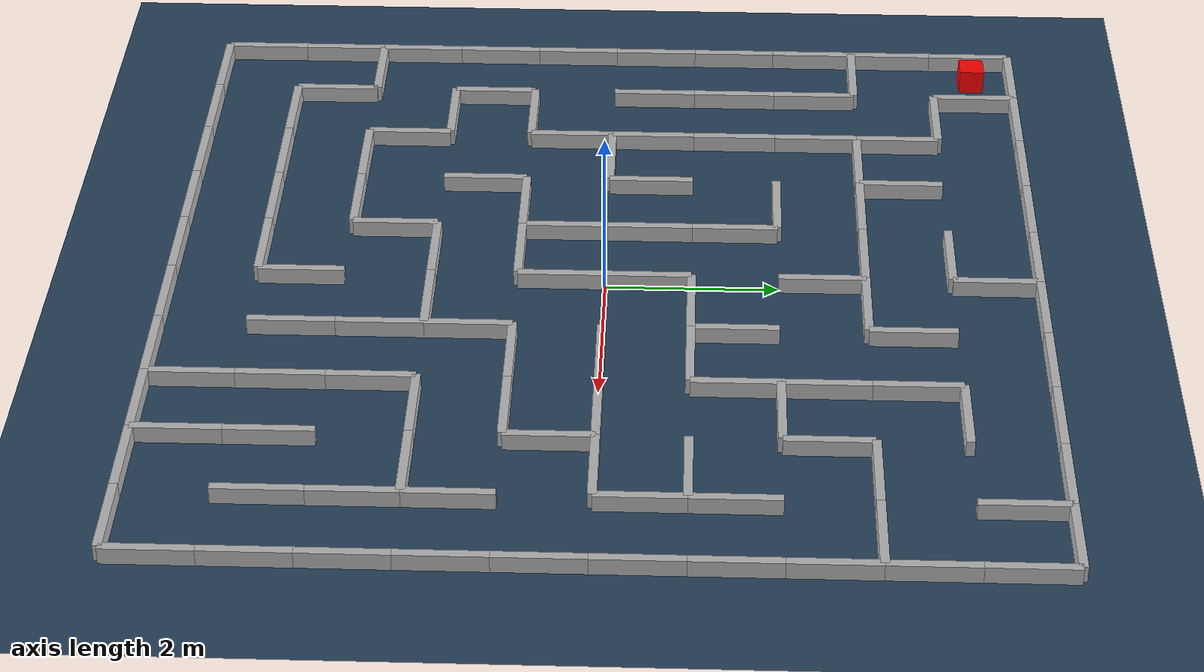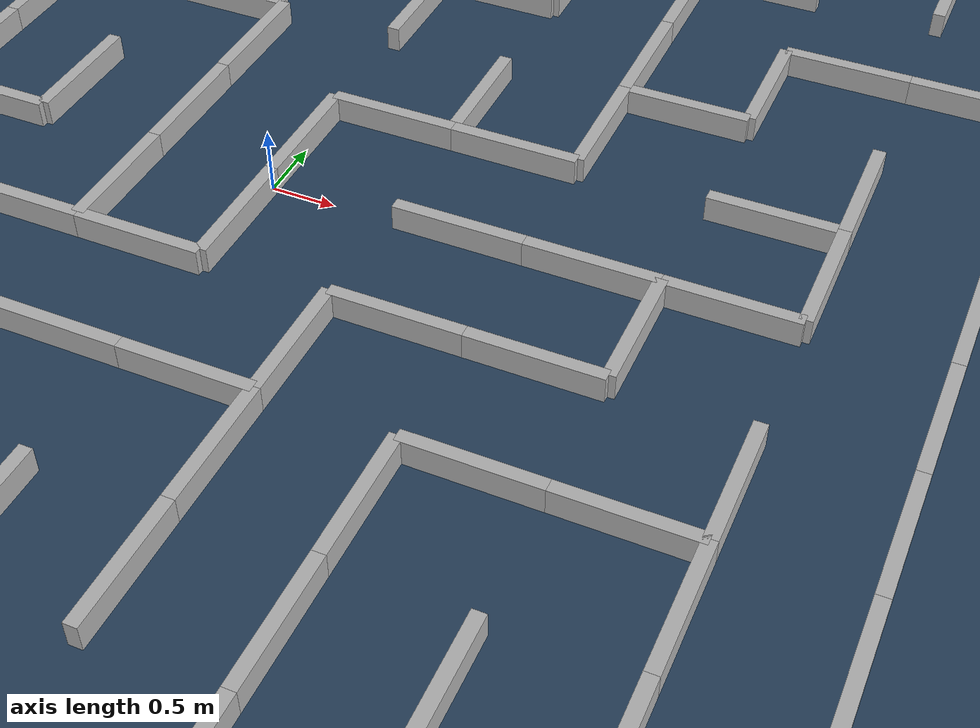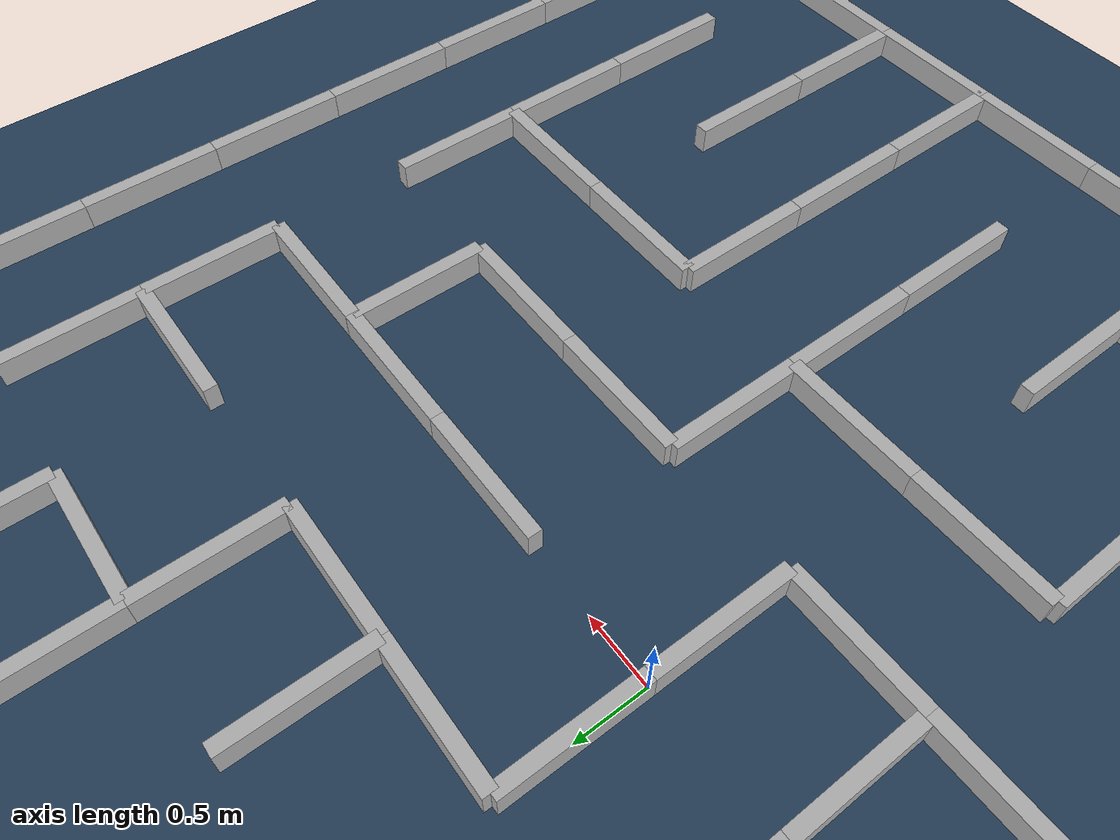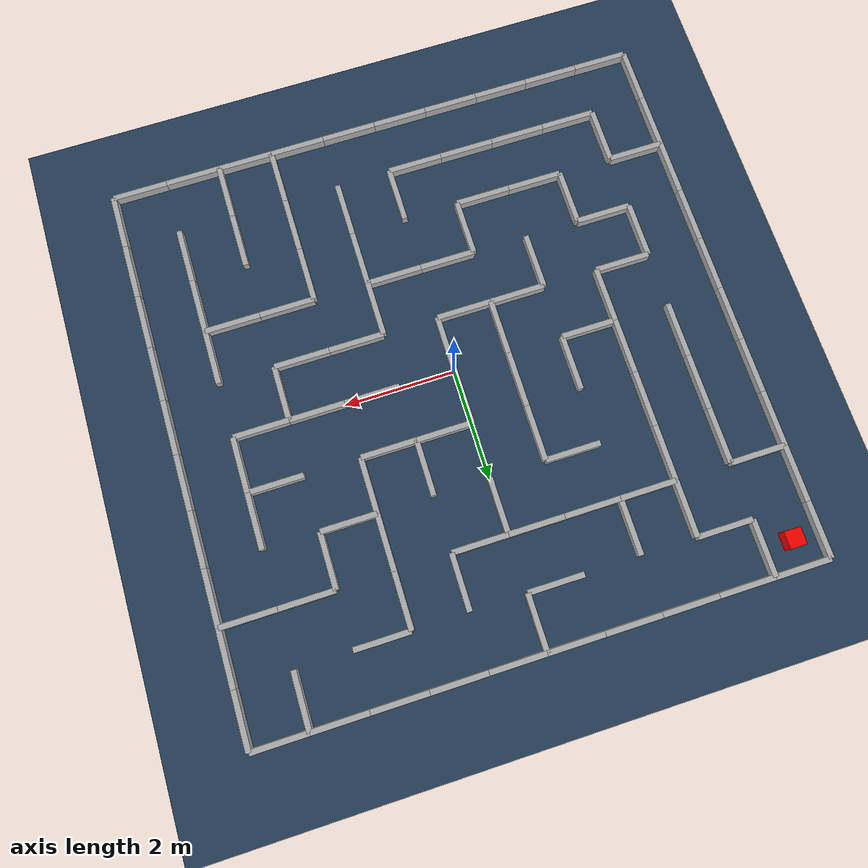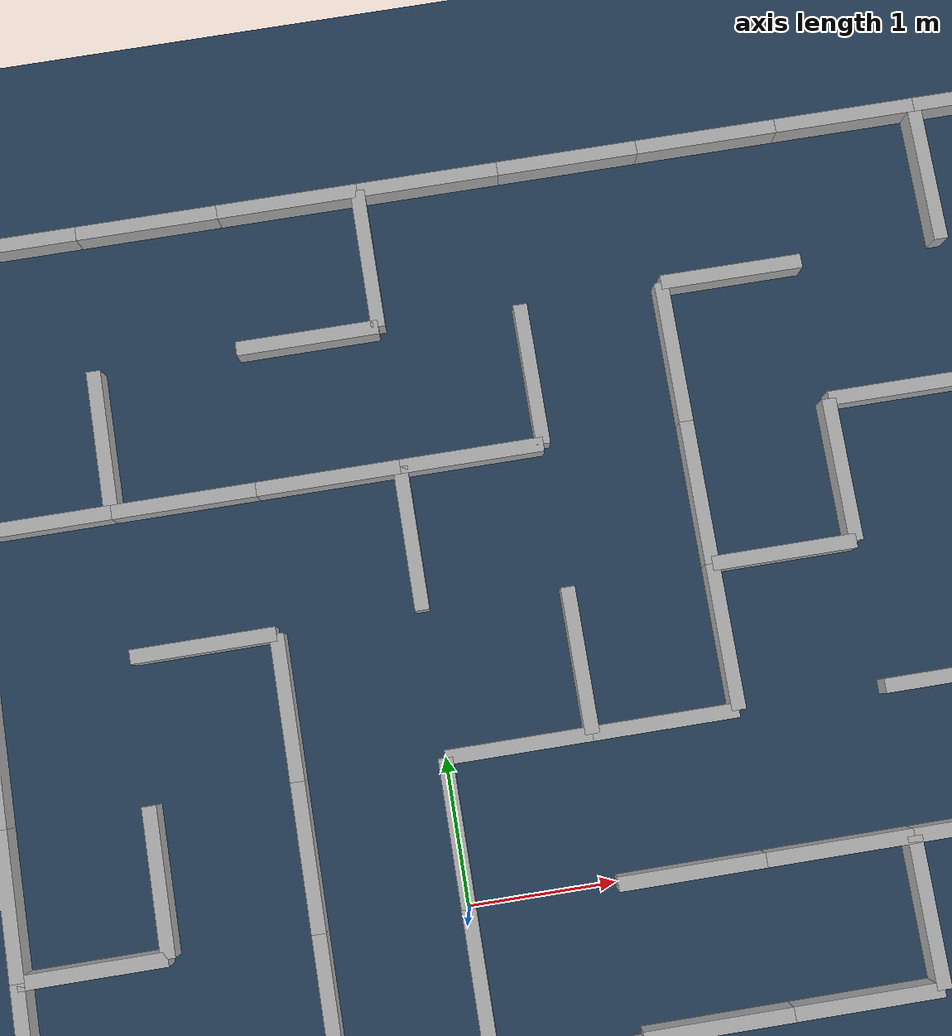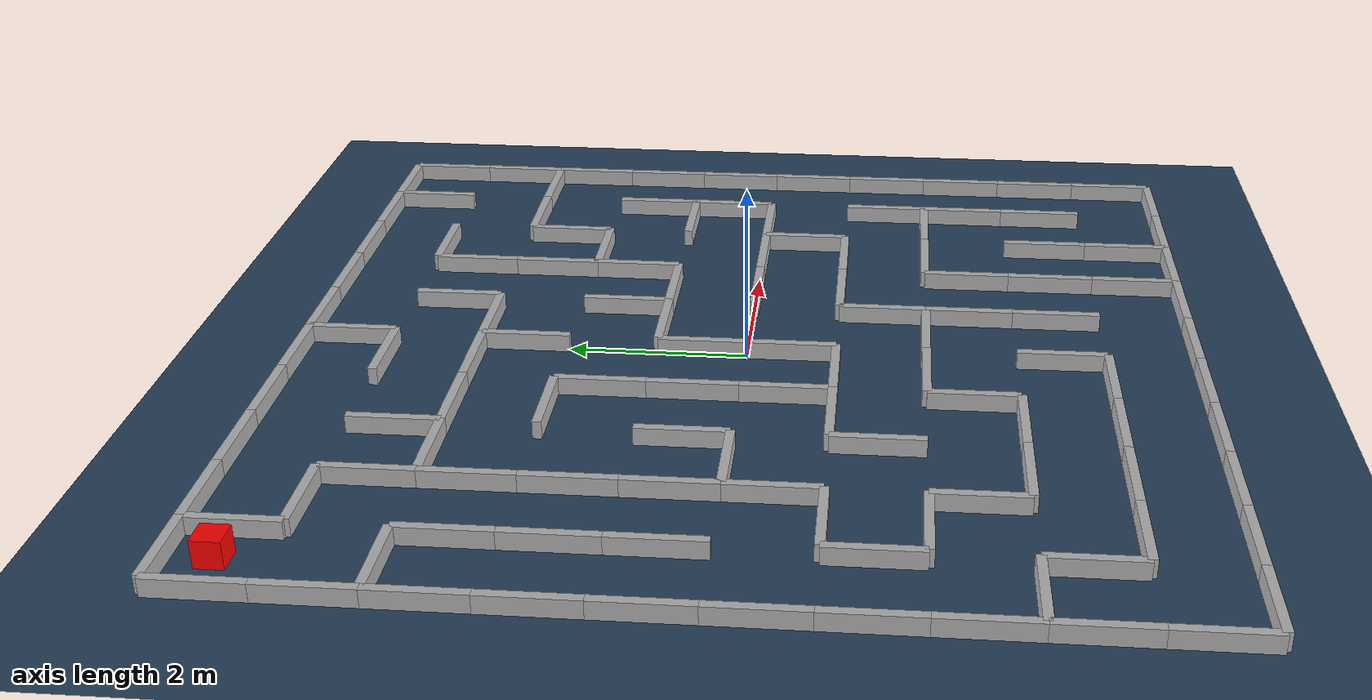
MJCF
<mujoco model="laberinto_generado">
    <compiler coordinate="local" inertiafromgeom="true"/>

    <asset>
        <texture name="suelo_textura" type="2d" builtin="checker" rgb1=".2 .3 .4" rgb2=".1 .2 .3" width="512" height="512" mark="none"/>
        <material name="suelo_material" texture="suelo_textura" texrepeat="2 2" texuniform="true"/>
    </asset>

    <worldbody>
        <light pos="0 0 5" dir="0 0 -1" directional="true"/>
        <geom name="suelo" type="plane" pos="0 0 0" size="10 10 0.1" material="suelo_material"/>

        <geom name="vwall_0" type="box" pos="-5.0 4.5 0.1" size="0.05 0.5 0.1" rgba="0.7 0.7 0.7 1"/>
        <geom name="vwall_1" type="box" pos="-4.0 4.5 0.1" size="0.05 0.5 0.1" rgba="0.7 0.7 0.7 1"/>
        <geom name="vwall_2" type="box" pos="0.0 4.5 0.1" size="0.05 0.5 0.1" rgba="0.7 0.7 0.7 1"/>
        <geom name="vwall_3" type="box" pos="4.0 4.5 0.1" size="0.05 0.5 0.1" rgba="0.7 0.7 0.7 1"/>
        <geom name="vwall_4" type="box" pos="5.0 4.5 0.1" size="0.05 0.5 0.1" rgba="0.7 0.7 0.7 1"/>
        <geom name="vwall_5" type="box" pos="-5.0 3.5 0.1" size="0.05 0.5 0.1" rgba="0.7 0.7 0.7 1"/>
        <geom name="vwall_6" type="box" pos="-3.0 3.5 0.1" size="0.05 0.5 0.1" rgba="0.7 0.7 0.7 1"/>
        <geom name="vwall_7" type="box" pos="-2.0 3.5 0.1" size="0.05 0.5 0.1" rgba="0.7 0.7 0.7 1"/>
        <geom name="vwall_8" type="box" pos="1.0 3.5 0.1" size="0.05 0.5 0.1" rgba="0.7 0.7 0.7 1"/>
        <geom name="vwall_9" type="box" pos="2.0 3.5 0.1" size="0.05 0.5 0.1" rgba="0.7 0.7 0.7 1"/>
        <geom name="vwall_10" type="box" pos="5.0 3.5 0.1" size="0.05 0.5 0.1" rgba="0.7 0.7 0.7 1"/>
        <geom name="vwall_11" type="box" pos="-5.0 2.5 0.1" size="0.05 0.5 0.1" rgba="0.7 0.7 0.7 1"/>
        <geom name="vwall_12" type="box" pos="-4.0 2.5 0.1" size="0.05 0.5 0.1" rgba="0.7 0.7 0.7 1"/>
        <geom name="vwall_13" type="box" pos="-3.0 2.5 0.1" size="0.05 0.5 0.1" rgba="0.7 0.7 0.7 1"/>
        <geom name="vwall_14" type="box" pos="0.0 2.5 0.1" size="0.05 0.5 0.1" rgba="0.7 0.7 0.7 1"/>
        <geom name="vwall_15" type="box" pos="2.0 2.5 0.1" size="0.05 0.5 0.1" rgba="0.7 0.7 0.7 1"/>
        <geom name="vwall_16" type="box" pos="3.0 2.5 0.1" size="0.05 0.5 0.1" rgba="0.7 0.7 0.7 1"/>
        <geom name="vwall_17" type="box" pos="5.0 2.5 0.1" size="0.05 0.5 0.1" rgba="0.7 0.7 0.7 1"/>
        <geom name="vwall_18" type="box" pos="-5.0 1.5 0.1" size="0.05 0.5 0.1" rgba="0.7 0.7 0.7 1"/>
        <geom name="vwall_19" type="box" pos="-4.0 1.5 0.1" size="0.05 0.5 0.1" rgba="0.7 0.7 0.7 1"/>
        <geom name="vwall_20" type="box" pos="-3.0 1.5 0.1" size="0.05 0.5 0.1" rgba="0.7 0.7 0.7 1"/>
        <geom name="vwall_21" type="box" pos="-1.0 1.5 0.1" size="0.05 0.5 0.1" rgba="0.7 0.7 0.7 1"/>
        <geom name="vwall_22" type="box" pos="1.0 1.5 0.1" size="0.05 0.5 0.1" rgba="0.7 0.7 0.7 1"/>
        <geom name="vwall_23" type="box" pos="2.0 1.5 0.1" size="0.05 0.5 0.1" rgba="0.7 0.7 0.7 1"/>
        <geom name="vwall_24" type="box" pos="4.0 1.5 0.1" size="0.05 0.5 0.1" rgba="0.7 0.7 0.7 1"/>
        <geom name="vwall_25" type="box" pos="5.0 1.5 0.1" size="0.05 0.5 0.1" rgba="0.7 0.7 0.7 1"/>
        <geom name="vwall_26" type="box" pos="-5.0 0.5 0.1" size="0.05 0.5 0.1" rgba="0.7 0.7 0.7 1"/>
        <geom name="vwall_27" type="box" pos="-4.0 0.5 0.1" size="0.05 0.5 0.1" rgba="0.7 0.7 0.7 1"/>
        <geom name="vwall_28" type="box" pos="-3.0 0.5 0.1" size="0.05 0.5 0.1" rgba="0.7 0.7 0.7 1"/>
        <geom name="vwall_29" type="box" pos="-2.0 0.5 0.1" size="0.05 0.5 0.1" rgba="0.7 0.7 0.7 1"/>
        <geom name="vwall_30" type="box" pos="-1.0 0.5 0.1" size="0.05 0.5 0.1" rgba="0.7 0.7 0.7 1"/>
        <geom name="vwall_31" type="box" pos="0.0 0.5 0.1" size="0.05 0.5 0.1" rgba="0.7 0.7 0.7 1"/>
        <geom name="vwall_32" type="box" pos="4.0 0.5 0.1" size="0.05 0.5 0.1" rgba="0.7 0.7 0.7 1"/>
        <geom name="vwall_33" type="box" pos="5.0 0.5 0.1" size="0.05 0.5 0.1" rgba="0.7 0.7 0.7 1"/>
        <geom name="vwall_34" type="box" pos="-5.0 -0.5 0.1" size="0.05 0.5 0.1" rgba="0.7 0.7 0.7 1"/>
        <geom name="vwall_35" type="box" pos="-3.0 -0.5 0.1" size="0.05 0.5 0.1" rgba="0.7 0.7 0.7 1"/>
        <geom name="vwall_36" type="box" pos="-1.0 -0.5 0.1" size="0.05 0.5 0.1" rgba="0.7 0.7 0.7 1"/>
        <geom name="vwall_37" type="box" pos="0.0 -0.5 0.1" size="0.05 0.5 0.1" rgba="0.7 0.7 0.7 1"/>
        <geom name="vwall_38" type="box" pos="3.0 -0.5 0.1" size="0.05 0.5 0.1" rgba="0.7 0.7 0.7 1"/>
        <geom name="vwall_39" type="box" pos="5.0 -0.5 0.1" size="0.05 0.5 0.1" rgba="0.7 0.7 0.7 1"/>
        <geom name="vwall_40" type="box" pos="-5.0 -1.5 0.1" size="0.05 0.5 0.1" rgba="0.7 0.7 0.7 1"/>
        <geom name="vwall_41" type="box" pos="-4.0 -1.5 0.1" size="0.05 0.5 0.1" rgba="0.7 0.7 0.7 1"/>
        <geom name="vwall_42" type="box" pos="-2.0 -1.5 0.1" size="0.05 0.5 0.1" rgba="0.7 0.7 0.7 1"/>
        <geom name="vwall_43" type="box" pos="1.0 -1.5 0.1" size="0.05 0.5 0.1" rgba="0.7 0.7 0.7 1"/>
        <geom name="vwall_44" type="box" pos="4.0 -1.5 0.1" size="0.05 0.5 0.1" rgba="0.7 0.7 0.7 1"/>
        <geom name="vwall_45" type="box" pos="5.0 -1.5 0.1" size="0.05 0.5 0.1" rgba="0.7 0.7 0.7 1"/>
        <geom name="vwall_46" type="box" pos="-5.0 -2.5 0.1" size="0.05 0.5 0.1" rgba="0.7 0.7 0.7 1"/>
        <geom name="vwall_47" type="box" pos="-3.0 -2.5 0.1" size="0.05 0.5 0.1" rgba="0.7 0.7 0.7 1"/>
        <geom name="vwall_48" type="box" pos="-1.0 -2.5 0.1" size="0.05 0.5 0.1" rgba="0.7 0.7 0.7 1"/>
        <geom name="vwall_49" type="box" pos="1.0 -2.5 0.1" size="0.05 0.5 0.1" rgba="0.7 0.7 0.7 1"/>
        <geom name="vwall_50" type="box" pos="2.0 -2.5 0.1" size="0.05 0.5 0.1" rgba="0.7 0.7 0.7 1"/>
        <geom name="vwall_51" type="box" pos="4.0 -2.5 0.1" size="0.05 0.5 0.1" rgba="0.7 0.7 0.7 1"/>
        <geom name="vwall_52" type="box" pos="5.0 -2.5 0.1" size="0.05 0.5 0.1" rgba="0.7 0.7 0.7 1"/>
        <geom name="vwall_53" type="box" pos="-5.0 -3.5 0.1" size="0.05 0.5 0.1" rgba="0.7 0.7 0.7 1"/>
        <geom name="vwall_54" type="box" pos="-4.0 -3.5 0.1" size="0.05 0.5 0.1" rgba="0.7 0.7 0.7 1"/>
        <geom name="vwall_55" type="box" pos="0.0 -3.5 0.1" size="0.05 0.5 0.1" rgba="0.7 0.7 0.7 1"/>
        <geom name="vwall_56" type="box" pos="1.0 -3.5 0.1" size="0.05 0.5 0.1" rgba="0.7 0.7 0.7 1"/>
        <geom name="vwall_57" type="box" pos="2.0 -3.5 0.1" size="0.05 0.5 0.1" rgba="0.7 0.7 0.7 1"/>
        <geom name="vwall_58" type="box" pos="3.0 -3.5 0.1" size="0.05 0.5 0.1" rgba="0.7 0.7 0.7 1"/>
        <geom name="vwall_59" type="box" pos="4.0 -3.5 0.1" size="0.05 0.5 0.1" rgba="0.7 0.7 0.7 1"/>
        <geom name="vwall_60" type="box" pos="5.0 -3.5 0.1" size="0.05 0.5 0.1" rgba="0.7 0.7 0.7 1"/>
        <geom name="vwall_61" type="box" pos="-5.0 -4.5 0.1" size="0.05 0.5 0.1" rgba="0.7 0.7 0.7 1"/>
        <geom name="vwall_62" type="box" pos="2.0 -4.5 0.1" size="0.05 0.5 0.1" rgba="0.7 0.7 0.7 1"/>
        <geom name="vwall_63" type="box" pos="3.0 -4.5 0.1" size="0.05 0.5 0.1" rgba="0.7 0.7 0.7 1"/>
        <geom name="vwall_64" type="box" pos="5.0 -4.5 0.1" size="0.05 0.5 0.1" rgba="0.7 0.7 0.7 1"/>
        <geom name="hwall_65" type="box" pos="-4.5 5.0 0.1" size="0.5 0.05 0.1" rgba="0.7 0.7 0.7 1"/>
        <geom name="hwall_66" type="box" pos="-3.5 5.0 0.1" size="0.5 0.05 0.1" rgba="0.7 0.7 0.7 1"/>
        <geom name="hwall_67" type="box" pos="-2.5 5.0 0.1" size="0.5 0.05 0.1" rgba="0.7 0.7 0.7 1"/>
        <geom name="hwall_68" type="box" pos="-1.5 5.0 0.1" size="0.5 0.05 0.1" rgba="0.7 0.7 0.7 1"/>
        <geom name="hwall_69" type="box" pos="-0.5 5.0 0.1" size="0.5 0.05 0.1" rgba="0.7 0.7 0.7 1"/>
        <geom name="hwall_70" type="box" pos="0.5 5.0 0.1" size="0.5 0.05 0.1" rgba="0.7 0.7 0.7 1"/>
        <geom name="hwall_71" type="box" pos="1.5 5.0 0.1" size="0.5 0.05 0.1" rgba="0.7 0.7 0.7 1"/>
        <geom name="hwall_72" type="box" pos="2.5 5.0 0.1" size="0.5 0.05 0.1" rgba="0.7 0.7 0.7 1"/>
        <geom name="hwall_73" type="box" pos="3.5 5.0 0.1" size="0.5 0.05 0.1" rgba="0.7 0.7 0.7 1"/>
        <geom name="hwall_74" type="box" pos="4.5 5.0 0.1" size="0.5 0.05 0.1" rgba="0.7 0.7 0.7 1"/>
        <geom name="hwall_75" type="box" pos="-3.5 4.0 0.1" size="0.5 0.05 0.1" rgba="0.7 0.7 0.7 1"/>
        <geom name="hwall_76" type="box" pos="-0.5 4.0 0.1" size="0.5 0.05 0.1" rgba="0.7 0.7 0.7 1"/>
        <geom name="hwall_77" type="box" pos="2.5 4.0 0.1" size="0.5 0.05 0.1" rgba="0.7 0.7 0.7 1"/>
        <geom name="hwall_78" type="box" pos="-4.5 3.0 0.1" size="0.5 0.05 0.1" rgba="0.7 0.7 0.7 1"/>
        <geom name="hwall_79" type="box" pos="-2.5 3.0 0.1" size="0.5 0.05 0.1" rgba="0.7 0.7 0.7 1"/>
        <geom name="hwall_80" type="box" pos="-1.5 3.0 0.1" size="0.5 0.05 0.1" rgba="0.7 0.7 0.7 1"/>
        <geom name="hwall_81" type="box" pos="-0.5 3.0 0.1" size="0.5 0.05 0.1" rgba="0.7 0.7 0.7 1"/>
        <geom name="hwall_82" type="box" pos="0.5 3.0 0.1" size="0.5 0.05 0.1" rgba="0.7 0.7 0.7 1"/>
        <geom name="hwall_83" type="box" pos="3.5 3.0 0.1" size="0.5 0.05 0.1" rgba="0.7 0.7 0.7 1"/>
        <geom name="hwall_84" type="box" pos="4.5 3.0 0.1" size="0.5 0.05 0.1" rgba="0.7 0.7 0.7 1"/>
        <geom name="hwall_85" type="box" pos="-1.5 2.0 0.1" size="0.5 0.05 0.1" rgba="0.7 0.7 0.7 1"/>
        <geom name="hwall_86" type="box" pos="2.5 2.0 0.1" size="0.5 0.05 0.1" rgba="0.7 0.7 0.7 1"/>
        <geom name="hwall_87" type="box" pos="0.5 1.0 0.1" size="0.5 0.05 0.1" rgba="0.7 0.7 0.7 1"/>
        <geom name="hwall_88" type="box" pos="1.5 1.0 0.1" size="0.5 0.05 0.1" rgba="0.7 0.7 0.7 1"/>
        <geom name="hwall_89" type="box" pos="3.5 1.0 0.1" size="0.5 0.05 0.1" rgba="0.7 0.7 0.7 1"/>
        <geom name="hwall_90" type="box" pos="-2.5 0.0 0.1" size="0.5 0.05 0.1" rgba="0.7 0.7 0.7 1"/>
        <geom name="hwall_91" type="box" pos="1.5 0.0 0.1" size="0.5 0.05 0.1" rgba="0.7 0.7 0.7 1"/>
        <geom name="hwall_92" type="box" pos="2.5 0.0 0.1" size="0.5 0.05 0.1" rgba="0.7 0.7 0.7 1"/>
        <geom name="hwall_93" type="box" pos="3.5 0.0 0.1" size="0.5 0.05 0.1" rgba="0.7 0.7 0.7 1"/>
        <geom name="hwall_94" type="box" pos="-3.5 -1.0 0.1" size="0.5 0.05 0.1" rgba="0.7 0.7 0.7 1"/>
        <geom name="hwall_95" type="box" pos="-1.5 -1.0 0.1" size="0.5 0.05 0.1" rgba="0.7 0.7 0.7 1"/>
        <geom name="hwall_96" type="box" pos="-0.5 -1.0 0.1" size="0.5 0.05 0.1" rgba="0.7 0.7 0.7 1"/>
        <geom name="hwall_97" type="box" pos="1.5 -1.0 0.1" size="0.5 0.05 0.1" rgba="0.7 0.7 0.7 1"/>
        <geom name="hwall_98" type="box" pos="2.5 -1.0 0.1" size="0.5 0.05 0.1" rgba="0.7 0.7 0.7 1"/>
        <geom name="hwall_99" type="box" pos="-3.5 -2.0 0.1" size="0.5 0.05 0.1" rgba="0.7 0.7 0.7 1"/>
        <geom name="hwall_100" type="box" pos="-0.5 -2.0 0.1" size="0.5 0.05 0.1" rgba="0.7 0.7 0.7 1"/>
        <geom name="hwall_101" type="box" pos="0.5 -2.0 0.1" size="0.5 0.05 0.1" rgba="0.7 0.7 0.7 1"/>
        <geom name="hwall_102" type="box" pos="2.5 -2.0 0.1" size="0.5 0.05 0.1" rgba="0.7 0.7 0.7 1"/>
        <geom name="hwall_103" type="box" pos="3.5 -2.0 0.1" size="0.5 0.05 0.1" rgba="0.7 0.7 0.7 1"/>
        <geom name="hwall_104" type="box" pos="-4.5 -3.0 0.1" size="0.5 0.05 0.1" rgba="0.7 0.7 0.7 1"/>
        <geom name="hwall_105" type="box" pos="-2.5 -3.0 0.1" size="0.5 0.05 0.1" rgba="0.7 0.7 0.7 1"/>
        <geom name="hwall_106" type="box" pos="-1.5 -3.0 0.1" size="0.5 0.05 0.1" rgba="0.7 0.7 0.7 1"/>
        <geom name="hwall_107" type="box" pos="-3.5 -4.0 0.1" size="0.5 0.05 0.1" rgba="0.7 0.7 0.7 1"/>
        <geom name="hwall_108" type="box" pos="-2.5 -4.0 0.1" size="0.5 0.05 0.1" rgba="0.7 0.7 0.7 1"/>
        <geom name="hwall_109" type="box" pos="-1.5 -4.0 0.1" size="0.5 0.05 0.1" rgba="0.7 0.7 0.7 1"/>
        <geom name="hwall_110" type="box" pos="-0.5 -4.0 0.1" size="0.5 0.05 0.1" rgba="0.7 0.7 0.7 1"/>
        <geom name="hwall_111" type="box" pos="-4.5 -5.0 0.1" size="0.5 0.05 0.1" rgba="0.7 0.7 0.7 1"/>
        <geom name="hwall_112" type="box" pos="-3.5 -5.0 0.1" size="0.5 0.05 0.1" rgba="0.7 0.7 0.7 1"/>
        <geom name="hwall_113" type="box" pos="-2.5 -5.0 0.1" size="0.5 0.05 0.1" rgba="0.7 0.7 0.7 1"/>
        <geom name="hwall_114" type="box" pos="-1.5 -5.0 0.1" size="0.5 0.05 0.1" rgba="0.7 0.7 0.7 1"/>
        <geom name="hwall_115" type="box" pos="-0.5 -5.0 0.1" size="0.5 0.05 0.1" rgba="0.7 0.7 0.7 1"/>
        <geom name="hwall_116" type="box" pos="0.5 -5.0 0.1" size="0.5 0.05 0.1" rgba="0.7 0.7 0.7 1"/>
        <geom name="hwall_117" type="box" pos="1.5 -5.0 0.1" size="0.5 0.05 0.1" rgba="0.7 0.7 0.7 1"/>
        <geom name="hwall_118" type="box" pos="2.5 -5.0 0.1" size="0.5 0.05 0.1" rgba="0.7 0.7 0.7 1"/>
        <geom name="hwall_119" type="box" pos="3.5 -5.0 0.1" size="0.5 0.05 0.1" rgba="0.7 0.7 0.7 1"/>
        <geom name="hwall_120" type="box" pos="4.5 -5.0 0.1" size="0.5 0.05 0.1" rgba="0.7 0.7 0.7 1"/>
        <geom name="agente" type="box" pos="-4.5 4.5 0.2" size="0.15 0.15 0.15" rgba="1 0 0 1"/>
    </worldbody>
</mujoco>
